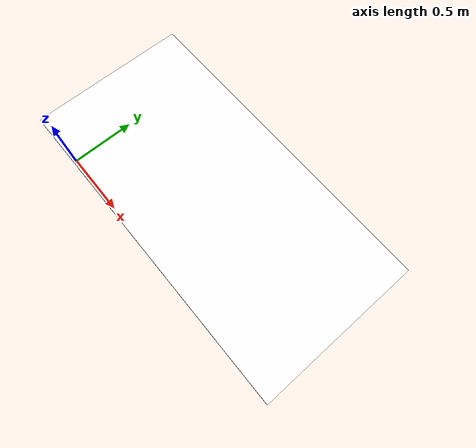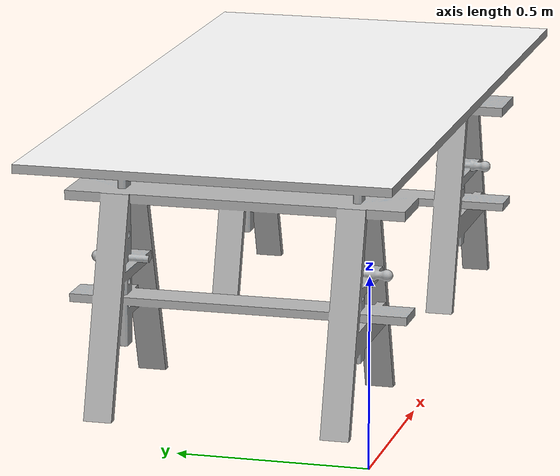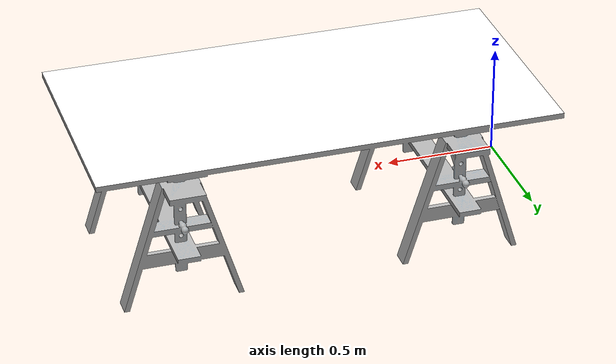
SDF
<?xml version="1.0" ?>
<sdf version="1.5">
  <model name="adjustable_table">
    <static>true</static>
    <link name="table_link">
        <collision name="table_collision">
         <geometry>
            <box>
                <size>1.70 0.51 0.55</size>
            </box>
        </geometry>
      </collision>

      <visual name="table_mesh">
        <cast_shadows>true</cast_shadows>
        <geometry>
            <mesh>
                <uri>model://adjustable_table/meshes/model.dae</uri>
            </mesh>
        </geometry>
      </visual>
    </link>
  </model>
</sdf>
